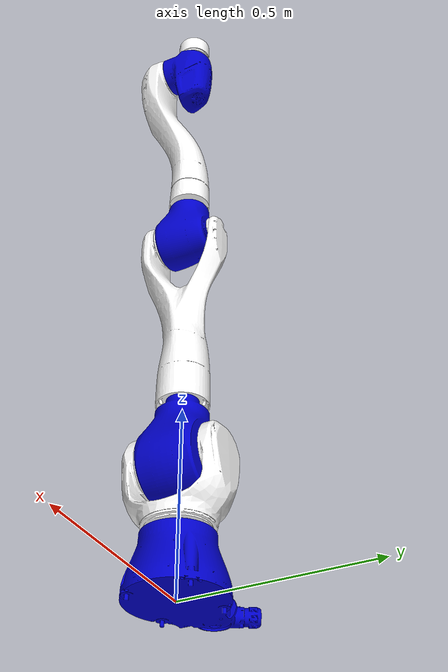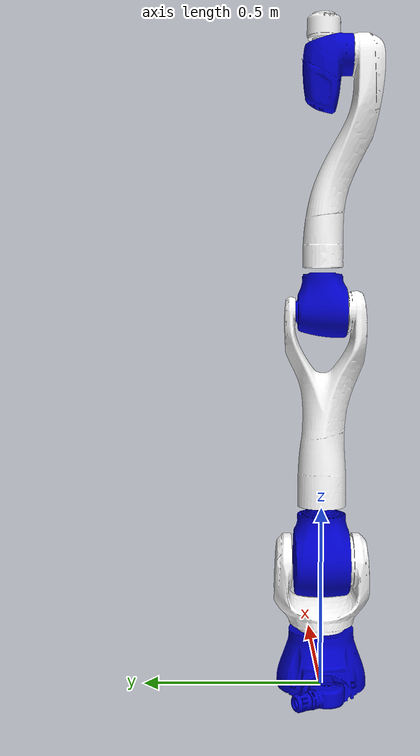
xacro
<?xml version="1.0"?>
<robot xmlns:xacro="http://wiki.ros.org/xacro"
       name="mira" >

  <xacro:arg name="prefix" default=""/>
  <xacro:arg name="parameter_file_name" default="mira_nominal"/>
  <xacro:include filename="$(find mira_description)/urdf/mira_macro.xacro" />
  <!-- arm -->

  <xacro:mira_robot prefix="$(arg prefix)"
                    parameter_file_name = "$(arg parameter_file_name)"/>

  <link name="world" />
  <joint name="world_joint" type="fixed">
    <parent link="world" />
    <child link = "$(arg prefix)root_link" />
    <origin xyz="0.0 0.0 0.0" rpy="0.0 0.0 0.0" />
  </joint>

</robot>

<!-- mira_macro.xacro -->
<robot name="mira" xmlns:xacro="http://wiki.ros.org/xacro" xmlns:controller="http://playerstage.sourceforge.net/gazebo/xmlschema/#controller" xmlns:interface="http://playerstage.sourceforge.net/gazebo/xmlschema/#interface" xmlns:sensor="http://playerstage.sourceforge.net/gazebo/xmlschema/#sensor" >

	<xacro:arg name="prefix" default=""/>
  	<xacro:arg name="parameter_file_name" default="mira_nominal"/>
  	<xacro:macro name="mira_robot" params="prefix:=${prefix} parameter_file_name:=mira_nominal">
		<xacro:include filename="$(find mira_description)/urdf/${parameter_file_name}.xacro" />
		<material name="blue">
			<color rgba="0 0 0.8 1"/>
		</material>

		<material name="white">
			<color rgba="1 1 1 1"/>
		</material>

		<material name="MelonYellow">
			<color rgba="1.0 0.6 0.0 1.0" />
		</material>

		<link name="${prefix}root_link"/>
		<joint name="${prefix}root_joint" type="fixed">  <!-- joint1 base_to_right_leg 0.2945 -->
			<origin rpy="0 0 1.5708" xyz="0 0 0.0" />
			<axis xyz="0 0 1" />
			<parent link="${prefix}root_link"/>
			<child link="${prefix}base_link"/>
		</joint>

		<link name="${prefix}base_link">  <!-- link0 -->
		<inertial>
			<mass value="9.02994035" />
			<origin rpy="0 0 0" xyz="-0.00864914 0.00066084 0.09191042" />
			<!-- did not chenge inertia values -->
			<inertia ixx="0.04871169" ixy="0.00072792"  ixz="-0.00354042"
									iyy="0.06082174" iyz="0.00036285"
														izz="0.06803946" />
		</inertial>
		<visual>
			<origin rpy="0 0 0" xyz="0 0 0" />
				<geometry>
				<mesh filename="package://mira_description/meshes/mira/Link0.stl"/>
				</geometry>
			<material name="blue"/>
		</visual>
		<collision>
			<origin rpy="0 0 0" xyz="0 0 0" />
				<geometry>
				<mesh filename="package://mira_description/meshes/collision/Link0.stl"/>
				</geometry>
			<material name="blue"/>
		</collision>
		</link>

		<link name="${prefix}link1">  <!-- link1 right_leg-->
		<inertial>
			<mass value="8.81388995" />
			<origin rpy="0 0 0" xyz="0.00009227 0.01727770 -0.09151695" />
			<inertia ixx="0.11695855" ixy="-0.00006599"  ixz="-0.00007443"
									iyy="0.09523956"    		iyz="-0.01391589"
																izz="0.05142057" />
		</inertial>
		<visual>
			<origin rpy="0 0 0" xyz="0 0 0" />
				<geometry>
				<mesh filename="package://mira_description/meshes/mira/Link1.stl"/>
				</geometry>
			<material name="white"/>
		</visual>
		<collision>
			<origin rpy="0 0 0" xyz="0 0 0" />
				<geometry>
				<mesh filename="package://mira_description/meshes/collision/Link1.stl"/>
				</geometry>
			<material name="white"/>
		</collision>
		</link>

		<joint name="${prefix}joint1" type="revolute">  <!-- joint1 base_to_right_leg 0.2945 -->
			<origin rpy="${R1} ${P1} ${Y1}" xyz="${x1} ${y1} ${z1}" />
			<axis xyz="0 0 1" />
			<limit lower="-3.14159" upper="3.14159" effort="1260" velocity="7.60" />
			<parent link="${prefix}base_link"/>
			<child link="${prefix}link1"/>
		</joint>

		<link name="${prefix}link2">  <!-- link2 right_base -->
			<inertial>
				<mass value="10.73876455" />
				<origin rpy="0 0 0" xyz="0.00005095 -0.02980593 0.00384129" />
				<inertia ixx="0.08469338" ixy="-0.00000976" ixz="0.00000284"
									iyy="0.04466526"        iyz="-0.00106970"
																izz="0.08929344" />
			</inertial>
			<visual>
				<origin rpy="0 0 0" xyz="0 0 0" />
				<geometry>
				<mesh filename="package://mira_description/meshes/mira/Link2.stl"/>
				</geometry>
				<material name="blue"/>
			</visual>
			<collision>
				<origin rpy="0 0 0" xyz="0 0 0" />
				<geometry>
				<mesh filename="package://mira_description/meshes/collision/Link2.stl"/>
				</geometry>
				<material name="blue"/>
			</collision>
		</link>

		<joint name="${prefix}joint2" type="revolute">  <!-- joint2 right_base_joint -->
			<origin rpy="${R2} ${P2} ${Y2}" xyz="${x2} ${y2} ${z2}" />
			<axis xyz="0 0 1" />
			<limit lower="-2.11" upper="2.11" effort="710" velocity="7.16" />
			<dynamics damping="13.0" friction="9.0" />
			<parent link="${prefix}link1"/>
			<child link="${prefix}link2"/>
		</joint>

		<link name="${prefix}link3">  <!-- link3 right_front_wheel -->
			<inertial>
				<mass value="7.80048461" />
				<origin rpy="0 0 0" xyz="0.00000508 -0.01311256 -0.29310398" />
				<inertia ixx="0.37362453" ixy="-0.00000061"  ixz="-0.00001502"
										iyy="0.36314616"    		iyz="0.02636093"
																	izz="0.02643739" />
			</inertial>
			<visual>
				<origin rpy="0 0 0" xyz="0 0 0" />
				<geometry>
					<mesh filename="package://mira_description/meshes/mira/Link3.stl"/>
				</geometry>
				<material name="white"/>
			</visual>
			<collision>
				<origin rpy="0 0 0" xyz="0 0 0" />
				<geometry>
					<mesh filename="package://mira_description/meshes/collision/Link3.stl"/>
				</geometry>
				<material name="white"/>
			</collision>
		</link>

		<joint name="${prefix}joint3" type="revolute">  <!-- joint3 right_front_wheel_joint -->
			<origin rpy="${R3} ${P3} ${Y3}" xyz="${x3} ${y3} ${z3}" />
			<!-- thin left 1.5708 3.1416 0  -->
			<axis xyz="0 0 1" />
			<limit lower="-3.14159" upper="3.14159" effort="380" velocity="9.43" />
			<dynamics damping="10.0" friction="4.5" />
			<parent link="${prefix}link2"/>
			<child link="${prefix}link3"/>
		</joint>

		<link name="${prefix}link4">  <!-- link4 right_back_wheel -->
			<inertial>
				<mass value="4.90782352" />
				<origin rpy="0 0 0" xyz="0.00000273   -0.02342897   -0.00561818" />
				<inertia ixx="0.02108339" ixy="-0.00000071"  ixz="-0.00000036"
										iyy="0.01108371"            iyz="0.00064263"
																	izz="0.02077348" />
			</inertial>
			<visual>
				<origin rpy="0 0 0" xyz="0 0 0" />
				<geometry>
					<mesh filename="package://mira_description/meshes/mira/Link4.stl" />
				</geometry>
				<material name="blue"/>
			</visual>
			<collision>
				<origin rpy="0 0 0" xyz="0 0 0" />
				<geometry>
					<mesh filename="package://mira_description/meshes/collision/Link4.stl" />
				</geometry>
				<material name="blue"/>
			</collision>
		</link>

		<joint name="${prefix}joint4" type="revolute">  <!-- joint4 right_back_wheel_joint -->
			<origin rpy="${R4} ${P4} ${Y4}" xyz="${x4} ${y4} ${z4}" />
			<axis xyz="0 0 1" />
			<limit lower="-2.35" upper="2.35" effort="70" velocity="17.4" />
			<dynamics damping="2.5" friction="4.0" />
			<parent link="${prefix}link3" />
			<child link="${prefix}link4" />
		</joint>

		<link name="${prefix}link5">  <!-- link5 left_leg -->
			<inertial>
				<mass value="5.89239887" />
				<origin rpy="0 0 0" xyz="0.00003764   0.05360461   -0.27051890" />
				<inertia ixx="0.34526601" ixy="-0.00001006"  ixz="-0.00004889"
											iyy="0.33395748"          iyz="-0.06425872"
																		izz="0.02387784" />
			</inertial>
			<visual>
				<origin rpy="0 0 0" xyz="0 0 0" />
				<geometry>
					<mesh filename="package://mira_description/meshes/mira/Link5.stl" />
				</geometry>
				<material name="white"/>
			</visual>
			<collision>
				<origin rpy="0 0 0" xyz="0 0 0" />
				<geometry>
					<mesh filename="package://mira_description/meshes/collision/Link5.stl" />
				</geometry>
				<material name="white"/>
			</collision>
		</link>

		<joint name="${prefix}joint5" type="revolute">  <!-- joint5 base_to_left_leg -0.65 -->
			<origin rpy="${R5} ${P5} ${Y5}" xyz="${x5} ${y5} ${z5}" />
			<axis xyz="0 0 1" />
			<limit lower="-3.14159" upper="3.14159" effort="80" velocity="18.6" />
			<dynamics damping="5.0" friction="4.0" />
			<parent link="${prefix}link4"/>
			<child link="${prefix}link5"/>
		</joint>

		<link name="${prefix}link6">  <!-- link6 left_base -->
			<inertial>
				<mass value="2.76974945" />
				<origin rpy="0 0 0" xyz="0.00007333   0.01105196   0.02462915" />
				<inertia ixx="0.00955946" ixy="-0.00001486" ixz="0.00000146"
											iyy="0.00723805"  iyz="0.00066557"
																izz="0.00641809" />
			</inertial>
			<visual>
				<origin rpy="0 0 0" xyz="0 0 0" />
				<geometry>
					<mesh filename="package://mira_description/meshes/mira/Link6.stl" />
				</geometry>
				<material name="blue"/>
			</visual>
			<collision>
				<origin rpy="0 0 0" xyz="0 0 0" />
				<geometry>
					<mesh filename="package://mira_description/meshes/collision/Link6.stl" />
				</geometry>
				<material name="blue"/>
			</collision>
		</link>

		<joint name="${prefix}joint6" type="revolute">  <!-- joint6 -->
			<origin rpy="${R6} ${P6} ${Y6}" xyz="${x6} ${y6} ${z6}" />
			<axis xyz="0 0 1" />
			<limit lower="-3.14159" upper="3.14159" effort="21" velocity="25.3" />
			<dynamics damping="1.25" friction="1.25" />
			<parent link="${prefix}link5"/>
			<child link="${prefix}link6"/>
		</joint>

		<link name="${prefix}link7">
			<inertial>
				<mass value="1.19341401" />
				<origin rpy="0 0 0" xyz="-0.00006102   0.00027280   0.04324279" />
				<inertia ixx="0.00254735" ixy="-0.00000278" ixz="-0.00000158"
											iyy="0.00255260"  iyz="-0.00000991"
																izz="0.00099944" />
			</inertial>
			<visual>
				<origin rpy="0 0 0" xyz="0 0 0" />
				<geometry>
					<mesh filename="package://mira_description/meshes/mira/Link7.stl" />
				</geometry>
				<material name="white"/>
			</visual>
			<collision>
				<origin rpy="0 0 0" xyz="0 0 0" />
				<geometry>
					<mesh filename="package://mira_description/meshes/collision/Link7.stl" />
				</geometry>
				<material name="white"/>
			</collision>
		</link>

		<joint name="${prefix}joint7" type="revolute">  <!-- joint7 -->
			<origin rpy="${R7} ${P7} ${Y7}" xyz="${x7} ${y7} ${z7}" />
			<axis xyz="0 0 1" />
			<limit lower="-3.14159" upper="3.14159" effort="10" velocity="10" />
			<dynamics damping="2" friction="2" />
			<parent link="${prefix}link6"/>
			<child link="${prefix}link7"/>
		</joint>

		<link name = "${prefix}tool0"/>
		<joint name="${prefix}link7_to_tool0" type="fixed">  <!-- joint7 -->
			<origin rpy="0 0 0" xyz="0 0 0.10" />
			<parent link="${prefix}link7"/>
			<child link="${prefix}tool0"/>
		</joint>

		<link name = "${prefix}flange"/>
		<joint name="${prefix}link7_to_flange" type="fixed">  <!-- joint7 -->
			<origin rpy="0 0 0" xyz="0 0 0.10" />
			<parent link="${prefix}link7"/>
			<child link="${prefix}flange"/>
		</joint>

		<link name = "${prefix}ee_link"/>
		<joint name="${prefix}flange_to_ee_link" type="fixed">  <!-- joint7 -->
			<origin rpy="0 0 0" xyz="0 0 0.0" />
			<parent link="${prefix}flange"/>
			<child link="${prefix}ee_link"/>
		</joint>
	</xacro:macro>
</robot>

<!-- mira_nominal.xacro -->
<robot xmlns:xacro="http://wiki.ros.org/xacro" name="mira">

<!-- Encoder offsets are not included here but set in a separate config file -->

<!-- Joint 1 -->
<xacro:property name="x1" value="0" />
<xacro:property name="y1" value="0" />
<xacro:property name="z1" value="0.352" />
<xacro:property name="R1" value="0" />
<xacro:property name="P1" value="0" />
<xacro:property name="Y1" value="-1.5708" />
<!-- Joint 2 -->
<xacro:property name="x2" value="0" />
<xacro:property name="y2" value="0" />
<xacro:property name="z2" value="0" />
<xacro:property name="R2" value="-1.5708" />
<xacro:property name="P2" value="0" />
<xacro:property name="Y2" value="0" />
<!-- Joint 3 -->
<xacro:property name="x3" value="0" />
<xacro:property name="y3" value="-0.7" />
<xacro:property name="z3" value="0" />
<xacro:property name="R3" value="1.5708" />
<xacro:property name="P3" value="-0" />
<xacro:property name="Y3" value="0" />
<!-- Joint 4 -->
<xacro:property name="x4" value="0" />
<xacro:property name="y4" value="0" />
<xacro:property name="z4" value="0" />
<xacro:property name="R4" value="-1.5708" />
<xacro:property name="P4" value="0" />
<xacro:property name="Y4" value="0" />
<!-- Joint 5 -->
<xacro:property name="x5" value="0" />
<xacro:property name="y5" value="-0.7" />
<xacro:property name="z5" value="0" />
<xacro:property name="R5" value="1.5708" />
<xacro:property name="P5" value="3.14159" />
<xacro:property name="Y5" value="0" />
<!-- Joint 6 -->
<xacro:property name="x6" value="0" />
<xacro:property name="y6" value="0" />
<xacro:property name="z6" value="0" />
<xacro:property name="R6" value="-1.5708" />
<xacro:property name="P6" value="0" />
<xacro:property name="Y6" value="0" />
<!-- Joint 7 -->
<xacro:property name="x7" value="0" />
<xacro:property name="y7" value="0" />
<xacro:property name="z7" value="0" />
<xacro:property name="R7" value="1.5708" />
<xacro:property name="P7" value="0" />
<xacro:property name="Y7" value="0" />
</robot>
